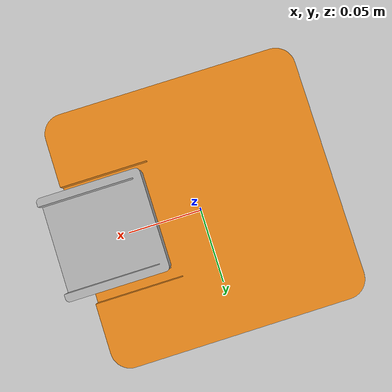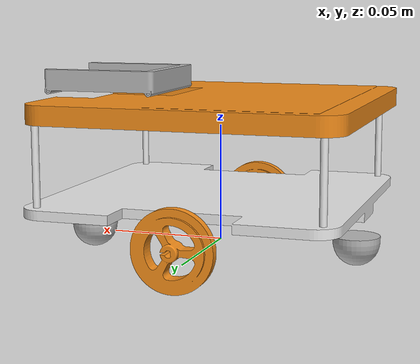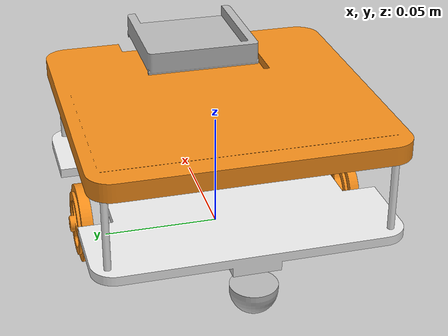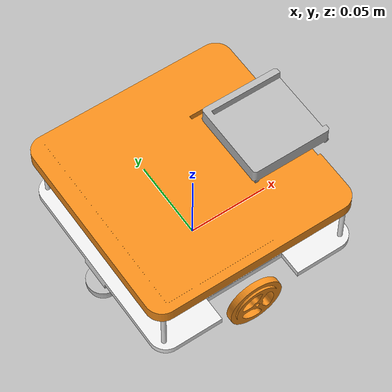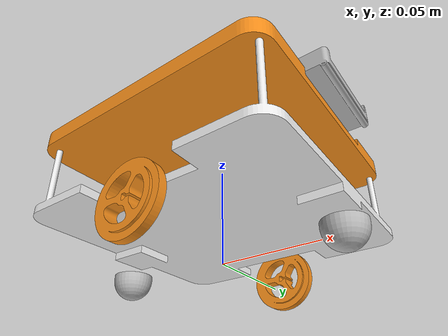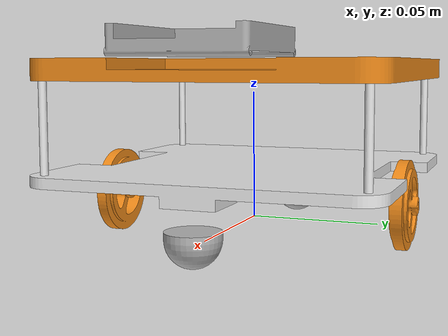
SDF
<sdf version='1.7'>
  <model name='cam_bot'>
    <link name='base_footprint'>
      <inertial>
        <pose>-0 0 0.015632 0 -0 0</pose>
        <mass>1.9</mass>
        <inertia>
          <ixx>0.0423536</ixx>
          <ixy>0.004708</ixy>
          <ixz>-0.0035484</ixz>
          <iyy>0.0446336</iyy>
          <iyz>0.0008904</iyz>
          <izz>0.07484</izz>
        </inertia>
      </inertial>
      <collision name='base_footprint_fixed_joint_lump__base_link_collision'>
        <pose>0 0 0.015 0 -0 0</pose>
        <geometry>
          <mesh>
            <scale>1 1 1</scale>
            <uri>model://rover_description/meshes/stl/base.stl</uri>
          </mesh>
        </geometry>
        <surface>
          <contact>
            <ode/>
          </contact>
          <friction>
            <ode/>
          </friction>
        </surface>
      </collision>
      <collision name='base_footprint_fixed_joint_lump__caster_front_collision_1'>
        <pose>0.06 0 -0.003 0 -0 0</pose>
        <geometry>
          <mesh>
            <scale>1 1 1</scale>
            <uri>model://rover_description/meshes/stl/caster_dummy.stl</uri>
          </mesh>
        </geometry>
      </collision>
      <collision name='base_footprint_fixed_joint_lump__caster_rear_collision_2'>
        <pose>-0.06 0 -0.003 0 -0 0</pose>
        <geometry>
          <mesh>
            <scale>1 1 1</scale>
            <uri>model://rover_description/meshes/stl/caster_dummy.stl</uri>
          </mesh>
        </geometry>
      </collision>
      <collision name='base_footprint_fixed_joint_lump__upper_plate_collision_3'>
        <pose>0 0 0.055 0 -0 0</pose>
        <geometry>
          <mesh>
            <scale>1 1 1</scale>
            <uri>model://rover_description/meshes/stl/upper_base_plate.stl</uri>
          </mesh>
        </geometry>
        <surface>
          <contact>
            <ode/>
          </contact>
          <friction>
            <ode/>
          </friction>
        </surface>
      </collision>
      <visual name='base_footprint_fixed_joint_lump__base_link_visual'>
        <pose>0 0 0.015 0 -0 0</pose>
        <geometry>
          <mesh>
            <scale>1 1 1</scale>
            <uri>model://rover_description/meshes/stl/base.stl</uri>
          </mesh>
        </geometry>
        <material>
          <script>
            <name>Gazebo/White</name>
            <uri>file://media/materials/scripts/gazebo.material</uri>
          </script>
        </material>
      </visual>
      <visual name='base_footprint_fixed_joint_lump__caster_front_visual_1'>
        <pose>0.06 0 -0.003 0 -0 0</pose>
        <geometry>
          <mesh>
            <scale>1 1 1</scale>
            <uri>model://rover_description/meshes/stl/caster_dummy.stl</uri>
          </mesh>
        </geometry>
      </visual>
      <visual name='base_footprint_fixed_joint_lump__caster_rear_visual_2'>
        <pose>-0.06 0 -0.003 0 -0 0</pose>
        <geometry>
          <mesh>
            <scale>1 1 1</scale>
            <uri>model://rover_description/meshes/stl/caster_dummy.stl</uri>
          </mesh>
        </geometry>
      </visual>
      <visual name='base_footprint_fixed_joint_lump__upper_plate_visual_3'>
        <pose>0 0 0.055 0 -0 0</pose>
        <geometry>
          <mesh>
            <scale>1 1 1</scale>
            <uri>model://rover_description/meshes/stl/upper_base_plate.stl</uri>
          </mesh>
        </geometry>
        <material>
          <script>
            <name>Gazebo/Orange</name>
            <uri>file://media/materials/scripts/gazebo.material</uri>
          </script>
        </material>
      </visual>
      <velocity_decay/>
      <velocity_decay/>
      <self_collide>1</self_collide>
      <gravity>1</gravity>
      <velocity_decay/>
    </link>
    <joint name='left_wheel_joint' type='revolute'>
      <pose relative_to='base_footprint'>0 0.06 0.008 0 -0 0</pose>
      <parent>base_footprint</parent>
      <child>wheel_left</child>
      <axis>
        <xyz>0 1 0</xyz>
        <limit>
          <lower>-1e+16</lower>
          <upper>1e+16</upper>
        </limit>
        <dynamics>
          <spring_reference>0</spring_reference>
          <spring_stiffness>0</spring_stiffness>
        </dynamics>
      </axis>
    </joint>
    <link name='wheel_left'>
      <pose relative_to='left_wheel_joint'>0 0 0 0 -0 0</pose>
      <inertial>
        <pose>0 0 0 0 0 -3.14119</pose>
        <mass>0.3</mass>
        <inertia>
          <ixx>0.01042</ixx>
          <ixy>0.001177</ixy>
          <ixz>-0.0008871</ixz>
          <iyy>0.01045</iyy>
          <iyz>0.0002226</iyz>
          <izz>0.01817</izz>
        </inertia>
      </inertial>
      <collision name='wheel_left_collision'>
        <pose>0 0 0 0 -0 0</pose>
        <geometry>
          <mesh>
            <scale>1 1 1</scale>
            <uri>model://rover_description/meshes/stl/wheel.stl</uri>
          </mesh>
        </geometry>
        <surface>
          <contact>
            <ode/>
          </contact>
          <friction>
            <ode/>
          </friction>
        </surface>
      </collision>
      <visual name='wheel_left_visual'>
        <pose>0 0 0 0 -0 0</pose>
        <geometry>
          <mesh>
            <scale>1 1 1</scale>
            <uri>model://rover_description/meshes/stl/wheel.stl</uri>
          </mesh>
        </geometry>
        <material>
          <script>
            <name>Gazebo/Orange</name>
            <uri>file://media/materials/scripts/gazebo.material</uri>
          </script>
        </material>
      </visual>
      <velocity_decay/>
      <self_collide>1</self_collide>
      <gravity>1</gravity>
      <velocity_decay/>
    </link>
    <joint name='right_wheel_joint' type='revolute'>
      <pose relative_to='base_footprint'>0 -0.06 0.008 0 -0 0</pose>
      <parent>base_footprint</parent>
      <child>wheel_right</child>
      <axis>
        <xyz>0 1 0</xyz>
        <limit>
          <lower>-1e+16</lower>
          <upper>1e+16</upper>
        </limit>
        <dynamics>
          <spring_reference>0</spring_reference>
          <spring_stiffness>0</spring_stiffness>
        </dynamics>
      </axis>
    </joint>
    <link name='wheel_right'>
      <pose relative_to='right_wheel_joint'>0 0 0 0 -0 0</pose>
      <inertial>
        <pose>0 0 0 0 -0 0</pose>
        <mass>0.3</mass>
        <inertia>
          <ixx>0.01042</ixx>
          <ixy>0.001177</ixy>
          <ixz>-0.0008871</ixz>
          <iyy>0.01045</iyy>
          <iyz>0.0002226</iyz>
          <izz>0.01817</izz>
        </inertia>
      </inertial>
      <collision name='wheel_right_collision'>
        <pose>0 0 0 0 -0 0</pose>
        <geometry>
          <mesh>
            <scale>1 1 1</scale>
            <uri>model://rover_description/meshes/stl/wheel.stl</uri>
          </mesh>
        </geometry>
        <surface>
          <contact>
            <ode/>
          </contact>
          <friction>
            <ode/>
          </friction>
        </surface>
      </collision>
      <visual name='wheel_right_visual'>
        <pose>0 0 0 0 -0 0</pose>
        <geometry>
          <mesh>
            <scale>1 1 1</scale>
            <uri>model://rover_description/meshes/stl/wheel.stl</uri>
          </mesh>
        </geometry>
        <material>
          <script>
            <name>Gazebo/Orange</name>
            <uri>file://media/materials/scripts/gazebo.material</uri>
          </script>
        </material>
      </visual>
      <velocity_decay/>
      <self_collide>1</self_collide>
      <gravity>1</gravity>
      <velocity_decay/>
    </link>
    <joint name='tray_joint' type='revolute'>
      <pose relative_to='base_footprint'>0.07 -0.026 0.065 0 -0 0</pose>
      <parent>base_footprint</parent>
      <child>tray</child>
      <axis>
        <xyz>0 1 0</xyz>
        <limit>
          <lower>-3.142</lower>
          <upper>3.142</upper>
          <effort>150</effort>
          <velocity>1.5</velocity>
        </limit>
        <dynamics>
          <spring_reference>0</spring_reference>
          <spring_stiffness>0</spring_stiffness>
        </dynamics>
      </axis>
    </joint>
    <link name='tray'>
      <pose relative_to='tray_joint'>0 0 0 0 -0 0</pose>
      <inertial>
        <pose>0 0 0 0 -0 0</pose>
        <mass>0.3</mass>
        <inertia>
          <ixx>0.01042</ixx>
          <ixy>0.001177</ixy>
          <ixz>-0.0008871</ixz>
          <iyy>0.01045</iyy>
          <iyz>0.0002226</iyz>
          <izz>0.01817</izz>
        </inertia>
      </inertial>
      <collision name='tray_collision'>
        <pose>0 0 0 0 -0 0</pose>
        <geometry>
          <mesh>
            <scale>1 1 1</scale>
            <uri>model://rover_description/meshes/stl/tray.stl</uri>
          </mesh>
        </geometry>
        <surface>
          <contact>
            <ode/>
          </contact>
          <friction>
            <ode/>
          </friction>
        </surface>
      </collision>
      <visual name='tray_visual'>
        <pose>0 0 0 0 -0 0</pose>
        <geometry>
          <mesh>
            <scale>1 1 1</scale>
            <uri>model://rover_description/meshes/stl/tray.stl</uri>
          </mesh>
        </geometry>
      </visual>
      <gravity>1</gravity>
      <velocity_decay/>
      <self_collide>1</self_collide>
    </link>
    <static>0</static>
    <plugin name='differential_drive_controller' filename='libgazebo_ros_diff_drive.so'>
      <alwaysOn>1</alwaysOn>
      <updateRate>20</updateRate>
      <leftJoint>left_wheel_joint</leftJoint>
      <rightJoint>right_wheel_joint</rightJoint>
      <wheelSeparation>0.4</wheelSeparation>
      <wheelDiameter>0.2</wheelDiameter>
      <torque>0.1</torque>
      <commandTopic>cmd_vel</commandTopic>
      <odometryTopic>odom</odometryTopic>
      <odometryFrame>odom</odometryFrame>
      <robotBaseFrame>base_link</robotBaseFrame>
    </plugin>
  </model>
</sdf>
